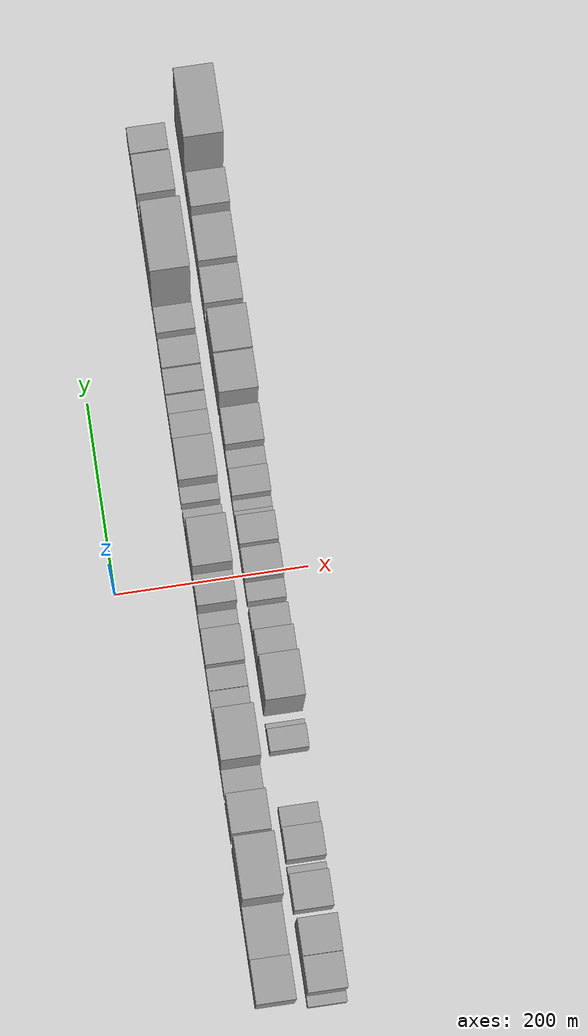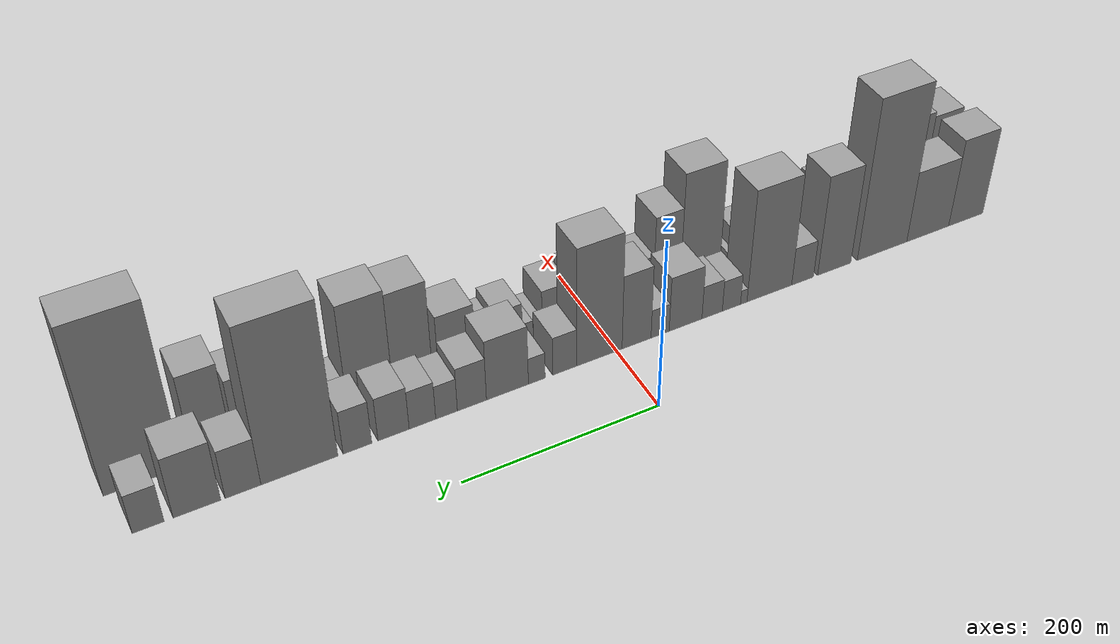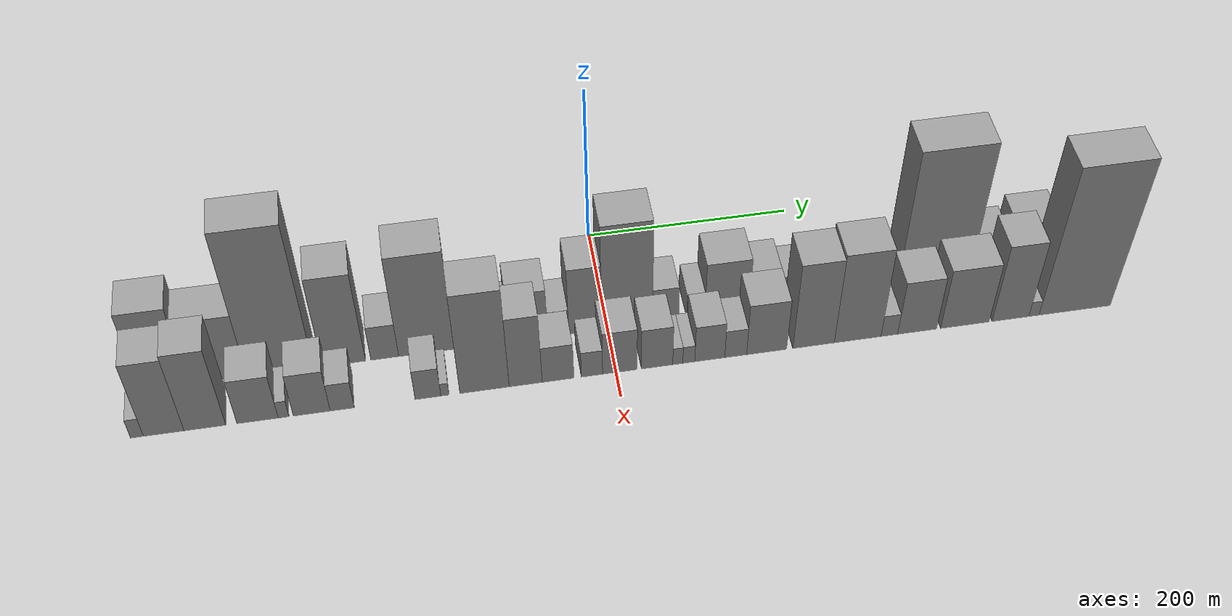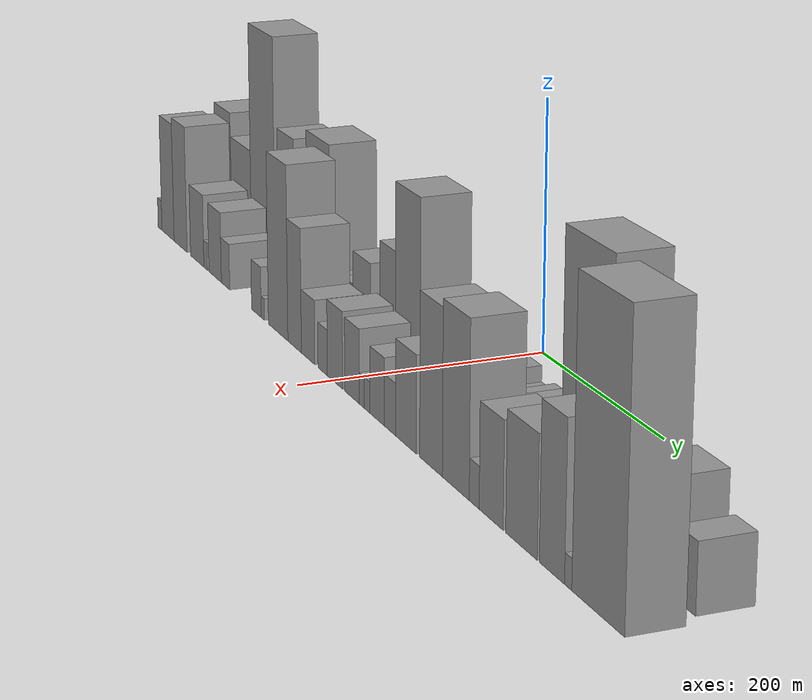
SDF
<sdf version="1.6">
 <world name="default">
  <scene>
   <sky><clouds><speed>12</speed></clouds></sky>
   <ambient>0.4 0.4 0.4 1</ambient>
   <background>0.7 0.7 0.7 1</background>
   <shadows>1</shadows>
  </scene>
  <gravity>0 0 -9.8066</gravity>
  <magnetic_field>6e-06 2.3e-05 -4.2e-05</magnetic_field>
  <physics default="0" name="default_physics" type="ode">
   <ode>
    <solver>
     <type>quick</type>
     <iters>10</iters>
     <sor>1.0</sor>
     <use_dynamic_moi_rescaling>0</use_dynamic_moi_rescaling>
    </solver>
    <constraints>
     <cfm>0</cfm>
     <erp>0.2</erp>
     <contact_max_correcting_vel>100</contact_max_correcting_vel>
     <contact_surface_layer>0.001</contact_surface_layer>
    </constraints>
   </ode>
   <max_step_size>0.004</max_step_size>
   <real_time_factor>1</real_time_factor>
   <real_time_update_rate>250</real_time_update_rate>
  </physics>
  <light name="sun" type="directional">
   <pose>0 0 10 0 0 0</pose>
   <diffuse>0.8 0.8 0.8 1</diffuse>
   <specular>0.2 0.2 0.2 1</specular>
   <attenuation>
    <range>1000</range>
    <constant>0.9</constant>
    <linear>0.01</linear>
    <quadratic>0.001</quadratic>
   </attenuation>
   <direction>-0.5 0.1 -0.9</direction>
  </light>
  <model name="building_1">
   <static>1</static>
   <pose>100.0000 -414.8555 0 0.000000 0.000000 0.000000</pose>
   <link name="link">
    <pose>0 0 55.50 0 0 0</pose>
    <collision name="collision"><geometry><box><size>40.0000 44.2891 111.0000</size></box></geometry></collision>
    <visual name="visual">
     <cast_shadows>0</cast_shadows>
     <geometry><box><size>40.0000 44.2891 111.0000</size></box></geometry>
     <material>
      <script>
       <uri>model://grey_wall/materials/scripts</uri>
       <uri>model://grey_wall/materials/textures</uri>
       <name>vrc/grey_wall</name>
      </script>
     </material>
    </visual>
   </link>
  </model>
  <model name="building_2">
   <static>1</static>
   <pose>100.0000 -365.9981 0 0.000000 0.000000 0.000000</pose>
   <link name="link">
    <pose>0 0 45.00 0 0 0</pose>
    <collision name="collision"><geometry><box><size>40.0000 53.4256 90.0000</size></box></geometry></collision>
    <visual name="visual">
     <cast_shadows>0</cast_shadows>
     <geometry><box><size>40.0000 53.4256 90.0000</size></box></geometry>
     <material>
      <script>
       <uri>model://grey_wall/materials/scripts</uri>
       <uri>model://grey_wall/materials/textures</uri>
       <name>vrc/grey_wall</name>
      </script>
     </material>
    </visual>
   </link>
  </model>
  <model name="building_3">
   <static>1</static>
   <pose>100.0000 -308.4895 0 0.000000 0.000000 0.000000</pose>
   <link name="link">
    <pose>0 0 100.50 0 0 0</pose>
    <collision name="collision"><geometry><box><size>40.0000 61.5916 201.0000</size></box></geometry></collision>
    <visual name="visual">
     <cast_shadows>0</cast_shadows>
     <geometry><box><size>40.0000 61.5916 201.0000</size></box></geometry>
     <material>
      <script>
       <uri>model://grey_wall/materials/scripts</uri>
       <uri>model://grey_wall/materials/textures</uri>
       <name>vrc/grey_wall</name>
      </script>
     </material>
    </visual>
   </link>
  </model>
  <model name="building_4">
   <static>1</static>
   <pose>100.0000 -249.5512 0 0.000000 0.000000 0.000000</pose>
   <link name="link">
    <pose>0 0 63.00 0 0 0</pose>
    <collision name="collision"><geometry><box><size>40.0000 40.2850 126.0000</size></box></geometry></collision>
    <visual name="visual">
     <cast_shadows>0</cast_shadows>
     <geometry><box><size>40.0000 40.2850 126.0000</size></box></geometry>
     <material>
      <script>
       <uri>model://grey_wall/materials/scripts</uri>
       <uri>model://grey_wall/materials/textures</uri>
       <name>vrc/grey_wall</name>
      </script>
     </material>
    </visual>
   </link>
  </model>
  <model name="building_5">
   <static>1</static>
   <pose>100.0000 -211.3880 0 0.000000 0.000000 0.000000</pose>
   <link name="link">
    <pose>0 0 24.00 0 0 0</pose>
    <collision name="collision"><geometry><box><size>40.0000 26.0413 48.0000</size></box></geometry></collision>
    <visual name="visual">
     <cast_shadows>0</cast_shadows>
     <geometry><box><size>40.0000 26.0413 48.0000</size></box></geometry>
     <material>
      <script>
       <uri>model://grey_wall/materials/scripts</uri>
       <uri>model://grey_wall/materials/textures</uri>
       <name>vrc/grey_wall</name>
      </script>
     </material>
    </visual>
   </link>
  </model>
  <model name="building_6">
   <static>1</static>
   <pose>100.0000 -172.1549 0 0.000000 0.000000 0.000000</pose>
   <link name="link">
    <pose>0 0 70.50 0 0 0</pose>
    <collision name="collision"><geometry><box><size>40.0000 52.4249 141.0000</size></box></geometry></collision>
    <visual name="visual">
     <cast_shadows>0</cast_shadows>
     <geometry><box><size>40.0000 52.4249 141.0000</size></box></geometry>
     <material>
      <script>
       <uri>model://grey_wall/materials/scripts</uri>
       <uri>model://grey_wall/materials/textures</uri>
       <name>vrc/grey_wall</name>
      </script>
     </material>
    </visual>
   </link>
  </model>
  <model name="building_7">
   <static>1</static>
   <pose>100.0000 -142.1472 0 0.000000 0.000000 0.000000</pose>
   <link name="link">
    <pose>0 0 9.00 0 0 0</pose>
    <collision name="collision"><geometry><box><size>40.0000 7.5905 18.0000</size></box></geometry></collision>
    <visual name="visual">
     <cast_shadows>0</cast_shadows>
     <geometry><box><size>40.0000 7.5905 18.0000</size></box></geometry>
     <material>
      <script>
       <uri>model://grey_wall/materials/scripts</uri>
       <uri>model://grey_wall/materials/textures</uri>
       <name>vrc/grey_wall</name>
      </script>
     </material>
    </visual>
   </link>
  </model>
  <model name="building_8">
   <static>1</static>
   <pose>100.0000 -127.8796 0 0.000000 0.000000 0.000000</pose>
   <link name="link">
    <pose>0 0 19.50 0 0 0</pose>
    <collision name="collision"><geometry><box><size>40.0000 20.9448 39.0000</size></box></geometry></collision>
    <visual name="visual">
     <cast_shadows>0</cast_shadows>
     <geometry><box><size>40.0000 20.9448 39.0000</size></box></geometry>
     <material>
      <script>
       <uri>model://grey_wall/materials/scripts</uri>
       <uri>model://grey_wall/materials/textures</uri>
       <name>vrc/grey_wall</name>
      </script>
     </material>
    </visual>
   </link>
  </model>
  <model name="building_9">
   <static>1</static>
   <pose>100.0000 -105.7908 0 0.000000 0.000000 0.000000</pose>
   <link name="link">
    <pose>0 0 21.00 0 0 0</pose>
    <collision name="collision"><geometry><box><size>40.0000 23.2327 42.0000</size></box></geometry></collision>
    <visual name="visual">
     <cast_shadows>0</cast_shadows>
     <geometry><box><size>40.0000 23.2327 42.0000</size></box></geometry>
     <material>
      <script>
       <uri>model://grey_wall/materials/scripts</uri>
       <uri>model://grey_wall/materials/textures</uri>
       <name>vrc/grey_wall</name>
      </script>
     </material>
    </visual>
   </link>
  </model>
  <model name="building_10">
   <static>1</static>
   <pose>100.0000 -75.7227 0 0.000000 0.000000 0.000000</pose>
   <link name="link">
    <pose>0 0 34.50 0 0 0</pose>
    <collision name="collision"><geometry><box><size>40.0000 36.9034 69.0000</size></box></geometry></collision>
    <visual name="visual">
     <cast_shadows>0</cast_shadows>
     <geometry><box><size>40.0000 36.9034 69.0000</size></box></geometry>
     <material>
      <script>
       <uri>model://grey_wall/materials/scripts</uri>
       <uri>model://grey_wall/materials/textures</uri>
       <name>vrc/grey_wall</name>
      </script>
     </material>
    </visual>
   </link>
  </model>
  <model name="building_11">
   <static>1</static>
   <pose>100.0000 -47.1928 0 0.000000 0.000000 0.000000</pose>
   <link name="link">
    <pose>0 0 18.00 0 0 0</pose>
    <collision name="collision"><geometry><box><size>40.0000 20.1564 36.0000</size></box></geometry></collision>
    <visual name="visual">
     <cast_shadows>0</cast_shadows>
     <geometry><box><size>40.0000 20.1564 36.0000</size></box></geometry>
     <material>
      <script>
       <uri>model://grey_wall/materials/scripts</uri>
       <uri>model://grey_wall/materials/textures</uri>
       <name>vrc/grey_wall</name>
      </script>
     </material>
    </visual>
   </link>
  </model>
  <model name="building_12">
   <static>1</static>
   <pose>100.0000 -21.2088 0 0.000000 0.000000 0.000000</pose>
   <link name="link">
    <pose>0 0 46.50 0 0 0</pose>
    <collision name="collision"><geometry><box><size>40.0000 31.8117 93.0000</size></box></geometry></collision>
    <visual name="visual">
     <cast_shadows>0</cast_shadows>
     <geometry><box><size>40.0000 31.8117 93.0000</size></box></geometry>
     <material>
      <script>
       <uri>model://grey_wall/materials/scripts</uri>
       <uri>model://grey_wall/materials/textures</uri>
       <name>vrc/grey_wall</name>
      </script>
     </material>
    </visual>
   </link>
  </model>
  <model name="building_13">
   <static>1</static>
   <pose>100.0000 19.1538 0 0.000000 0.000000 0.000000</pose>
   <link name="link">
    <pose>0 0 73.50 0 0 0</pose>
    <collision name="collision"><geometry><box><size>40.0000 48.9134 147.0000</size></box></geometry></collision>
    <visual name="visual">
     <cast_shadows>0</cast_shadows>
     <geometry><box><size>40.0000 48.9134 147.0000</size></box></geometry>
     <material>
      <script>
       <uri>model://grey_wall/materials/scripts</uri>
       <uri>model://grey_wall/materials/textures</uri>
       <name>vrc/grey_wall</name>
      </script>
     </material>
    </visual>
   </link>
  </model>
  <model name="building_14">
   <static>1</static>
   <pose>100.0000 56.3110 0 0.000000 0.000000 0.000000</pose>
   <link name="link">
    <pose>0 0 24.00 0 0 0</pose>
    <collision name="collision"><geometry><box><size>40.0000 25.4011 48.0000</size></box></geometry></collision>
    <visual name="visual">
     <cast_shadows>0</cast_shadows>
     <geometry><box><size>40.0000 25.4011 48.0000</size></box></geometry>
     <material>
      <script>
       <uri>model://grey_wall/materials/scripts</uri>
       <uri>model://grey_wall/materials/textures</uri>
       <name>vrc/grey_wall</name>
      </script>
     </material>
    </visual>
   </link>
  </model>
  <model name="building_15">
   <static>1</static>
   <pose>100.0000 85.7866 0 0.000000 0.000000 0.000000</pose>
   <link name="link">
    <pose>0 0 16.50 0 0 0</pose>
    <collision name="collision"><geometry><box><size>40.0000 17.5499 33.0000</size></box></geometry></collision>
    <visual name="visual">
     <cast_shadows>0</cast_shadows>
     <geometry><box><size>40.0000 17.5499 33.0000</size></box></geometry>
     <material>
      <script>
       <uri>model://grey_wall/materials/scripts</uri>
       <uri>model://grey_wall/materials/textures</uri>
       <name>vrc/grey_wall</name>
      </script>
     </material>
    </visual>
   </link>
  </model>
  <model name="building_16">
   <static>1</static>
   <pose>100.0000 116.1992 0 0.000000 0.000000 0.000000</pose>
   <link name="link">
    <pose>0 0 37.50 0 0 0</pose>
    <collision name="collision"><geometry><box><size>40.0000 43.2753 75.0000</size></box></geometry></collision>
    <visual name="visual">
     <cast_shadows>0</cast_shadows>
     <geometry><box><size>40.0000 43.2753 75.0000</size></box></geometry>
     <material>
      <script>
       <uri>model://grey_wall/materials/scripts</uri>
       <uri>model://grey_wall/materials/textures</uri>
       <name>vrc/grey_wall</name>
      </script>
     </material>
    </visual>
   </link>
  </model>
  <model name="building_17">
   <static>1</static>
   <pose>100.0000 152.5779 0 0.000000 0.000000 0.000000</pose>
   <link name="link">
    <pose>0 0 27.00 0 0 0</pose>
    <collision name="collision"><geometry><box><size>40.0000 29.4822 54.0000</size></box></geometry></collision>
    <visual name="visual">
     <cast_shadows>0</cast_shadows>
     <geometry><box><size>40.0000 29.4822 54.0000</size></box></geometry>
     <material>
      <script>
       <uri>model://grey_wall/materials/scripts</uri>
       <uri>model://grey_wall/materials/textures</uri>
       <name>vrc/grey_wall</name>
      </script>
     </material>
    </visual>
   </link>
  </model>
  <model name="building_18">
   <static>1</static>
   <pose>100.0000 178.1741 0 0.000000 0.000000 0.000000</pose>
   <link name="link">
    <pose>0 0 21.00 0 0 0</pose>
    <collision name="collision"><geometry><box><size>40.0000 21.7101 42.0000</size></box></geometry></collision>
    <visual name="visual">
     <cast_shadows>0</cast_shadows>
     <geometry><box><size>40.0000 21.7101 42.0000</size></box></geometry>
     <material>
      <script>
       <uri>model://grey_wall/materials/scripts</uri>
       <uri>model://grey_wall/materials/textures</uri>
       <name>vrc/grey_wall</name>
      </script>
     </material>
    </visual>
   </link>
  </model>
  <model name="building_19">
   <static>1</static>
   <pose>100.0000 202.1980 0 0.000000 0.000000 0.000000</pose>
   <link name="link">
    <pose>0 0 24.00 0 0 0</pose>
    <collision name="collision"><geometry><box><size>40.0000 26.3378 48.0000</size></box></geometry></collision>
    <visual name="visual">
     <cast_shadows>0</cast_shadows>
     <geometry><box><size>40.0000 26.3378 48.0000</size></box></geometry>
     <material>
      <script>
       <uri>model://grey_wall/materials/scripts</uri>
       <uri>model://grey_wall/materials/textures</uri>
       <name>vrc/grey_wall</name>
      </script>
     </material>
    </visual>
   </link>
  </model>
  <model name="building_20">
   <static>1</static>
   <pose>100.0000 230.6252 0 0.000000 0.000000 0.000000</pose>
   <link name="link">
    <pose>0 0 27.00 0 0 0</pose>
    <collision name="collision"><geometry><box><size>40.0000 30.5164 54.0000</size></box></geometry></collision>
    <visual name="visual">
     <cast_shadows>0</cast_shadows>
     <geometry><box><size>40.0000 30.5164 54.0000</size></box></geometry>
     <material>
      <script>
       <uri>model://grey_wall/materials/scripts</uri>
       <uri>model://grey_wall/materials/textures</uri>
       <name>vrc/grey_wall</name>
      </script>
     </material>
    </visual>
   </link>
  </model>
  <model name="building_21">
   <static>1</static>
   <pose>100.0000 265.6750 0 0.000000 0.000000 0.000000</pose>
   <link name="link">
    <pose>0 0 27.00 0 0 0</pose>
    <collision name="collision"><geometry><box><size>40.0000 27.5833 54.0000</size></box></geometry></collision>
    <visual name="visual">
     <cast_shadows>0</cast_shadows>
     <geometry><box><size>40.0000 27.5833 54.0000</size></box></geometry>
     <material>
      <script>
       <uri>model://grey_wall/materials/scripts</uri>
       <uri>model://grey_wall/materials/textures</uri>
       <name>vrc/grey_wall</name>
      </script>
     </material>
    </visual>
   </link>
  </model>
  <model name="building_22">
   <static>1</static>
   <pose>100.0000 320.4977 0 0.000000 0.000000 0.000000</pose>
   <link name="link">
    <pose>0 0 96.00 0 0 0</pose>
    <collision name="collision"><geometry><box><size>40.0000 72.0619 192.0000</size></box></geometry></collision>
    <visual name="visual">
     <cast_shadows>0</cast_shadows>
     <geometry><box><size>40.0000 72.0619 192.0000</size></box></geometry>
     <material>
      <script>
       <uri>model://grey_wall/materials/scripts</uri>
       <uri>model://grey_wall/materials/textures</uri>
       <name>vrc/grey_wall</name>
      </script>
     </material>
    </visual>
   </link>
  </model>
  <model name="building_23">
   <static>1</static>
   <pose>100.0000 372.8843 0 0.000000 0.000000 0.000000</pose>
   <link name="link">
    <pose>0 0 30.00 0 0 0</pose>
    <collision name="collision"><geometry><box><size>40.0000 32.7114 60.0000</size></box></geometry></collision>
    <visual name="visual">
     <cast_shadows>0</cast_shadows>
     <geometry><box><size>40.0000 32.7114 60.0000</size></box></geometry>
     <material>
      <script>
       <uri>model://grey_wall/materials/scripts</uri>
       <uri>model://grey_wall/materials/textures</uri>
       <name>vrc/grey_wall</name>
      </script>
     </material>
    </visual>
   </link>
  </model>
  <model name="building_24">
   <static>1</static>
   <pose>100.0000 414.5282 0 0.000000 0.000000 0.000000</pose>
   <link name="link">
    <pose>0 0 37.50 0 0 0</pose>
    <collision name="collision"><geometry><box><size>40.0000 42.5766 75.0000</size></box></geometry></collision>
    <visual name="visual">
     <cast_shadows>0</cast_shadows>
     <geometry><box><size>40.0000 42.5766 75.0000</size></box></geometry>
     <material>
      <script>
       <uri>model://grey_wall/materials/scripts</uri>
       <uri>model://grey_wall/materials/textures</uri>
       <name>vrc/grey_wall</name>
      </script>
     </material>
    </visual>
   </link>
  </model>
  <model name="building_25">
   <static>1</static>
   <pose>100.0000 457.8258 0 0.000000 0.000000 0.000000</pose>
   <link name="link">
    <pose>0 0 24.00 0 0 0</pose>
    <collision name="collision"><geometry><box><size>40.0000 28.0185 48.0000</size></box></geometry></collision>
    <visual name="visual">
     <cast_shadows>0</cast_shadows>
     <geometry><box><size>40.0000 28.0185 48.0000</size></box></geometry>
     <material>
      <script>
       <uri>model://grey_wall/materials/scripts</uri>
       <uri>model://grey_wall/materials/textures</uri>
       <name>vrc/grey_wall</name>
      </script>
     </material>
    </visual>
   </link>
  </model>
  <model name="building_26">
   <static>1</static>
   <pose>152.0000 -438.3015 0 0.000000 0.000000 0.000000</pose>
   <link name="link">
    <pose>0 0 13.50 0 0 0</pose>
    <collision name="collision"><geometry><box><size>40.0000 11.3970 27.0000</size></box></geometry></collision>
    <visual name="visual">
     <cast_shadows>0</cast_shadows>
     <geometry><box><size>40.0000 11.3970 27.0000</size></box></geometry>
     <material>
      <script>
       <uri>model://grey_wall/materials/scripts</uri>
       <uri>model://grey_wall/materials/textures</uri>
       <name>vrc/grey_wall</name>
      </script>
     </material>
    </visual>
   </link>
  </model>
  <model name="building_27">
   <static>1</static>
   <pose>152.0000 -414.5225 0 0.000000 0.000000 0.000000</pose>
   <link name="link">
    <pose>0 0 52.50 0 0 0</pose>
    <collision name="collision"><geometry><box><size>40.0000 36.1611 105.0000</size></box></geometry></collision>
    <visual name="visual">
     <cast_shadows>0</cast_shadows>
     <geometry><box><size>40.0000 36.1611 105.0000</size></box></geometry>
     <material>
      <script>
       <uri>model://grey_wall/materials/scripts</uri>
       <uri>model://grey_wall/materials/textures</uri>
       <name>vrc/grey_wall</name>
      </script>
     </material>
    </visual>
   </link>
  </model>
  <model name="building_28">
   <static>1</static>
   <pose>152.0000 -377.7430 0 0.000000 0.000000 0.000000</pose>
   <link name="link">
    <pose>0 0 55.50 0 0 0</pose>
    <collision name="collision"><geometry><box><size>40.0000 37.3979 111.0000</size></box></geometry></collision>
    <visual name="visual">
     <cast_shadows>0</cast_shadows>
     <geometry><box><size>40.0000 37.3979 111.0000</size></box></geometry>
     <material>
      <script>
       <uri>model://grey_wall/materials/scripts</uri>
       <uri>model://grey_wall/materials/textures</uri>
       <name>vrc/grey_wall</name>
      </script>
     </material>
    </visual>
   </link>
  </model>
  <model name="building_29">
   <static>1</static>
   <pose>152.0000 -330.5047 0 0.000000 0.000000 0.000000</pose>
   <link name="link">
    <pose>0 0 31.50 0 0 0</pose>
    <collision name="collision"><geometry><box><size>40.0000 37.0786 63.0000</size></box></geometry></collision>
    <visual name="visual">
     <cast_shadows>0</cast_shadows>
     <geometry><box><size>40.0000 37.0786 63.0000</size></box></geometry>
     <material>
      <script>
       <uri>model://grey_wall/materials/scripts</uri>
       <uri>model://grey_wall/materials/textures</uri>
       <name>vrc/grey_wall</name>
      </script>
     </material>
    </visual>
   </link>
  </model>
  <model name="building_30">
   <static>1</static>
   <pose>152.0000 -307.1126 0 0.000000 0.000000 0.000000</pose>
   <link name="link">
    <pose>0 0 12.00 0 0 0</pose>
    <collision name="collision"><geometry><box><size>40.0000 9.7056 24.0000</size></box></geometry></collision>
    <visual name="visual">
     <cast_shadows>0</cast_shadows>
     <geometry><box><size>40.0000 9.7056 24.0000</size></box></geometry>
     <material>
      <script>
       <uri>model://grey_wall/materials/scripts</uri>
       <uri>model://grey_wall/materials/textures</uri>
       <name>vrc/grey_wall</name>
      </script>
     </material>
    </visual>
   </link>
  </model>
  <model name="building_31">
   <static>1</static>
   <pose>152.0000 -281.5223 0 0.000000 0.000000 0.000000</pose>
   <link name="link">
    <pose>0 0 30.00 0 0 0</pose>
    <collision name="collision"><geometry><box><size>40.0000 33.4751 60.0000</size></box></geometry></collision>
    <visual name="visual">
     <cast_shadows>0</cast_shadows>
     <geometry><box><size>40.0000 33.4751 60.0000</size></box></geometry>
     <material>
      <script>
       <uri>model://grey_wall/materials/scripts</uri>
       <uri>model://grey_wall/materials/textures</uri>
       <name>vrc/grey_wall</name>
      </script>
     </material>
    </visual>
   </link>
  </model>
  <model name="building_32">
   <static>1</static>
   <pose>152.0000 -253.8220 0 0.000000 0.000000 0.000000</pose>
   <link name="link">
    <pose>0 0 19.50 0 0 0</pose>
    <collision name="collision"><geometry><box><size>40.0000 21.9255 39.0000</size></box></geometry></collision>
    <visual name="visual">
     <cast_shadows>0</cast_shadows>
     <geometry><box><size>40.0000 21.9255 39.0000</size></box></geometry>
     <material>
      <script>
       <uri>model://grey_wall/materials/scripts</uri>
       <uri>model://grey_wall/materials/textures</uri>
       <name>vrc/grey_wall</name>
      </script>
     </material>
    </visual>
   </link>
  </model>
  <model name="building_33">
   <static>1</static>
   <pose>152.0000 -175.3027 0 0.000000 0.000000 0.000000</pose>
   <link name="link">
    <pose>0 0 21.00 0 0 0</pose>
    <collision name="collision"><geometry><box><size>40.0000 23.7043 42.0000</size></box></geometry></collision>
    <visual name="visual">
     <cast_shadows>0</cast_shadows>
     <geometry><box><size>40.0000 23.7043 42.0000</size></box></geometry>
     <material>
      <script>
       <uri>model://grey_wall/materials/scripts</uri>
       <uri>model://grey_wall/materials/textures</uri>
       <name>vrc/grey_wall</name>
      </script>
     </material>
    </visual>
   </link>
  </model>
  <model name="building_34">
   <static>1</static>
   <pose>152.0000 -159.6773 0 0.000000 0.000000 0.000000</pose>
   <link name="link">
    <pose>0 0 9.00 0 0 0</pose>
    <collision name="collision"><geometry><box><size>40.0000 7.5464 18.0000</size></box></geometry></collision>
    <visual name="visual">
     <cast_shadows>0</cast_shadows>
     <geometry><box><size>40.0000 7.5464 18.0000</size></box></geometry>
     <material>
      <script>
       <uri>model://grey_wall/materials/scripts</uri>
       <uri>model://grey_wall/materials/textures</uri>
       <name>vrc/grey_wall</name>
      </script>
     </material>
    </visual>
   </link>
  </model>
  <model name="building_35">
   <static>1</static>
   <pose>152.0000 -123.0187 0 0.000000 0.000000 0.000000</pose>
   <link name="link">
    <pose>0 0 70.50 0 0 0</pose>
    <collision name="collision"><geometry><box><size>40.0000 45.7707 141.0000</size></box></geometry></collision>
    <visual name="visual">
     <cast_shadows>0</cast_shadows>
     <geometry><box><size>40.0000 45.7707 141.0000</size></box></geometry>
     <material>
      <script>
       <uri>model://grey_wall/materials/scripts</uri>
       <uri>model://grey_wall/materials/textures</uri>
       <name>vrc/grey_wall</name>
      </script>
     </material>
    </visual>
   </link>
  </model>
  <model name="building_36">
   <static>1</static>
   <pose>152.0000 -84.7481 0 0.000000 0.000000 0.000000</pose>
   <link name="link">
    <pose>0 0 49.50 0 0 0</pose>
    <collision name="collision"><geometry><box><size>40.0000 30.7704 99.0000</size></box></geometry></collision>
    <visual name="visual">
     <cast_shadows>0</cast_shadows>
     <geometry><box><size>40.0000 30.7704 99.0000</size></box></geometry>
     <material>
      <script>
       <uri>model://grey_wall/materials/scripts</uri>
       <uri>model://grey_wall/materials/textures</uri>
       <name>vrc/grey_wall</name>
      </script>
     </material>
    </visual>
   </link>
  </model>
  <model name="building_37">
   <static>1</static>
   <pose>152.0000 -54.4962 0 0.000000 0.000000 0.000000</pose>
   <link name="link">
    <pose>0 0 25.50 0 0 0</pose>
    <collision name="collision"><geometry><box><size>40.0000 29.7334 51.0000</size></box></geometry></collision>
    <visual name="visual">
     <cast_shadows>0</cast_shadows>
     <geometry><box><size>40.0000 29.7334 51.0000</size></box></geometry>
     <material>
      <script>
       <uri>model://grey_wall/materials/scripts</uri>
       <uri>model://grey_wall/materials/textures</uri>
       <name>vrc/grey_wall</name>
      </script>
     </material>
    </visual>
   </link>
  </model>
  <model name="building_38">
   <static>1</static>
   <pose>152.0000 -22.6252 0 0.000000 0.000000 0.000000</pose>
   <link name="link">
    <pose>0 0 18.00 0 0 0</pose>
    <collision name="collision"><geometry><box><size>40.0000 20.0086 36.0000</size></box></geometry></collision>
    <visual name="visual">
     <cast_shadows>0</cast_shadows>
     <geometry><box><size>40.0000 20.0086 36.0000</size></box></geometry>
     <material>
      <script>
       <uri>model://grey_wall/materials/scripts</uri>
       <uri>model://grey_wall/materials/textures</uri>
       <name>vrc/grey_wall</name>
      </script>
     </material>
    </visual>
   </link>
  </model>
  <model name="building_39">
   <static>1</static>
   <pose>152.0000 3.7139 0 0.000000 0.000000 0.000000</pose>
   <link name="link">
    <pose>0 0 30.00 0 0 0</pose>
    <collision name="collision"><geometry><box><size>40.0000 32.6697 60.0000</size></box></geometry></collision>
    <visual name="visual">
     <cast_shadows>0</cast_shadows>
     <geometry><box><size>40.0000 32.6697 60.0000</size></box></geometry>
     <material>
      <script>
       <uri>model://grey_wall/materials/scripts</uri>
       <uri>model://grey_wall/materials/textures</uri>
       <name>vrc/grey_wall</name>
      </script>
     </material>
    </visual>
   </link>
  </model>
  <model name="building_40">
   <static>1</static>
   <pose>152.0000 38.8727 0 0.000000 0.000000 0.000000</pose>
   <link name="link">
    <pose>0 0 28.50 0 0 0</pose>
    <collision name="collision"><geometry><box><size>40.0000 29.6478 57.0000</size></box></geometry></collision>
    <visual name="visual">
     <cast_shadows>0</cast_shadows>
     <geometry><box><size>40.0000 29.6478 57.0000</size></box></geometry>
     <material>
      <script>
       <uri>model://grey_wall/materials/scripts</uri>
       <uri>model://grey_wall/materials/textures</uri>
       <name>vrc/grey_wall</name>
      </script>
     </material>
    </visual>
   </link>
  </model>
  <model name="building_41">
   <static>1</static>
   <pose>152.0000 58.5143 0 0.000000 0.000000 0.000000</pose>
   <link name="link">
    <pose>0 0 12.00 0 0 0</pose>
    <collision name="collision"><geometry><box><size>40.0000 9.6354 24.0000</size></box></geometry></collision>
    <visual name="visual">
     <cast_shadows>0</cast_shadows>
     <geometry><box><size>40.0000 9.6354 24.0000</size></box></geometry>
     <material>
      <script>
       <uri>model://grey_wall/materials/scripts</uri>
       <uri>model://grey_wall/materials/textures</uri>
       <name>vrc/grey_wall</name>
      </script>
     </material>
    </visual>
   </link>
  </model>
  <model name="building_42">
   <static>1</static>
   <pose>152.0000 69.0441 0 0.000000 0.000000 0.000000</pose>
   <link name="link">
    <pose>0 0 12.00 0 0 0</pose>
    <collision name="collision"><geometry><box><size>40.0000 11.4242 24.0000</size></box></geometry></collision>
    <visual name="visual">
     <cast_shadows>0</cast_shadows>
     <geometry><box><size>40.0000 11.4242 24.0000</size></box></geometry>
     <material>
      <script>
       <uri>model://grey_wall/materials/scripts</uri>
       <uri>model://grey_wall/materials/textures</uri>
       <name>vrc/grey_wall</name>
      </script>
     </material>
    </visual>
   </link>
  </model>
  <model name="building_43">
   <static>1</static>
   <pose>152.0000 89.0532 0 0.000000 0.000000 0.000000</pose>
   <link name="link">
    <pose>0 0 25.50 0 0 0</pose>
    <collision name="collision"><geometry><box><size>40.0000 28.5941 51.0000</size></box></geometry></collision>
    <visual name="visual">
     <cast_shadows>0</cast_shadows>
     <geometry><box><size>40.0000 28.5941 51.0000</size></box></geometry>
     <material>
      <script>
       <uri>model://grey_wall/materials/scripts</uri>
       <uri>model://grey_wall/materials/textures</uri>
       <name>vrc/grey_wall</name>
      </script>
     </material>
    </visual>
   </link>
  </model>
  <model name="building_44">
   <static>1</static>
   <pose>152.0000 113.8425 0 0.000000 0.000000 0.000000</pose>
   <link name="link">
    <pose>0 0 19.50 0 0 0</pose>
    <collision name="collision"><geometry><box><size>40.0000 20.9843 39.0000</size></box></geometry></collision>
    <visual name="visual">
     <cast_shadows>0</cast_shadows>
     <geometry><box><size>40.0000 20.9843 39.0000</size></box></geometry>
     <material>
      <script>
       <uri>model://grey_wall/materials/scripts</uri>
       <uri>model://grey_wall/materials/textures</uri>
       <name>vrc/grey_wall</name>
      </script>
     </material>
    </visual>
   </link>
  </model>
  <model name="building_45">
   <static>1</static>
   <pose>152.0000 143.6163 0 0.000000 0.000000 0.000000</pose>
   <link name="link">
    <pose>0 0 36.00 0 0 0</pose>
    <collision name="collision"><geometry><box><size>40.0000 38.5632 72.0000</size></box></geometry></collision>
    <visual name="visual">
     <cast_shadows>0</cast_shadows>
     <geometry><box><size>40.0000 38.5632 72.0000</size></box></geometry>
     <material>
      <script>
       <uri>model://grey_wall/materials/scripts</uri>
       <uri>model://grey_wall/materials/textures</uri>
       <name>vrc/grey_wall</name>
      </script>
     </material>
    </visual>
   </link>
  </model>
  <model name="building_46">
   <static>1</static>
   <pose>152.0000 189.0044 0 0.000000 0.000000 0.000000</pose>
   <link name="link">
    <pose>0 0 60.00 0 0 0</pose>
    <collision name="collision"><geometry><box><size>40.0000 40.2131 120.0000</size></box></geometry></collision>
    <visual name="visual">
     <cast_shadows>0</cast_shadows>
     <geometry><box><size>40.0000 40.2131 120.0000</size></box></geometry>
     <material>
      <script>
       <uri>model://grey_wall/materials/scripts</uri>
       <uri>model://grey_wall/materials/textures</uri>
       <name>vrc/grey_wall</name>
      </script>
     </material>
    </visual>
   </link>
  </model>
  <model name="building_47">
   <static>1</static>
   <pose>152.0000 231.8665 0 0.000000 0.000000 0.000000</pose>
   <link name="link">
    <pose>0 0 63.00 0 0 0</pose>
    <collision name="collision"><geometry><box><size>40.0000 45.5110 126.0000</size></box></geometry></collision>
    <visual name="visual">
     <cast_shadows>0</cast_shadows>
     <geometry><box><size>40.0000 45.5110 126.0000</size></box></geometry>
     <material>
      <script>
       <uri>model://grey_wall/materials/scripts</uri>
       <uri>model://grey_wall/materials/textures</uri>
       <name>vrc/grey_wall</name>
      </script>
     </material>
    </visual>
   </link>
  </model>
  <model name="building_48">
   <static>1</static>
   <pose>152.0000 262.7739 0 0.000000 0.000000 0.000000</pose>
   <link name="link">
    <pose>0 0 15.00 0 0 0</pose>
    <collision name="collision"><geometry><box><size>40.0000 16.3037 30.0000</size></box></geometry></collision>
    <visual name="visual">
     <cast_shadows>0</cast_shadows>
     <geometry><box><size>40.0000 16.3037 30.0000</size></box></geometry>
     <material>
      <script>
       <uri>model://grey_wall/materials/scripts</uri>
       <uri>model://grey_wall/materials/textures</uri>
       <name>vrc/grey_wall</name>
      </script>
     </material>
    </visual>
   </link>
  </model>
  <model name="building_49">
   <static>1</static>
   <pose>152.0000 290.0811 0 0.000000 0.000000 0.000000</pose>
   <link name="link">
    <pose>0 0 37.50 0 0 0</pose>
    <collision name="collision"><geometry><box><size>40.0000 38.3106 75.0000</size></box></geometry></collision>
    <visual name="visual">
     <cast_shadows>0</cast_shadows>
     <geometry><box><size>40.0000 38.3106 75.0000</size></box></geometry>
     <material>
      <script>
       <uri>model://grey_wall/materials/scripts</uri>
       <uri>model://grey_wall/materials/textures</uri>
       <name>vrc/grey_wall</name>
      </script>
     </material>
    </visual>
   </link>
  </model>
  <model name="building_50">
   <static>1</static>
   <pose>152.0000 337.2323 0 0.000000 0.000000 0.000000</pose>
   <link name="link">
    <pose>0 0 42.00 0 0 0</pose>
    <collision name="collision"><geometry><box><size>40.0000 47.9918 84.0000</size></box></geometry></collision>
    <visual name="visual">
     <cast_shadows>0</cast_shadows>
     <geometry><box><size>40.0000 47.9918 84.0000</size></box></geometry>
     <material>
      <script>
       <uri>model://grey_wall/materials/scripts</uri>
       <uri>model://grey_wall/materials/textures</uri>
       <name>vrc/grey_wall</name>
      </script>
     </material>
    </visual>
   </link>
  </model>
  <model name="building_51">
   <static>1</static>
   <pose>152.0000 382.5155 0 0.000000 0.000000 0.000000</pose>
   <link name="link">
    <pose>0 0 54.00 0 0 0</pose>
    <collision name="collision"><geometry><box><size>40.0000 36.5745 108.0000</size></box></geometry></collision>
    <visual name="visual">
     <cast_shadows>0</cast_shadows>
     <geometry><box><size>40.0000 36.5745 108.0000</size></box></geometry>
     <material>
      <script>
       <uri>model://grey_wall/materials/scripts</uri>
       <uri>model://grey_wall/materials/textures</uri>
       <name>vrc/grey_wall</name>
      </script>
     </material>
    </visual>
   </link>
  </model>
  <model name="building_52">
   <static>1</static>
   <pose>152.0000 405.8879 0 0.000000 0.000000 0.000000</pose>
   <link name="link">
    <pose>0 0 10.50 0 0 0</pose>
    <collision name="collision"><geometry><box><size>40.0000 10.1703 21.0000</size></box></geometry></collision>
    <visual name="visual">
     <cast_shadows>0</cast_shadows>
     <geometry><box><size>40.0000 10.1703 21.0000</size></box></geometry>
     <material>
      <script>
       <uri>model://grey_wall/materials/scripts</uri>
       <uri>model://grey_wall/materials/textures</uri>
       <name>vrc/grey_wall</name>
      </script>
     </material>
    </visual>
   </link>
  </model>
  <model name="building_53">
   <static>1</static>
   <pose>152.0000 446.6959 0 0.000000 0.000000 0.000000</pose>
   <link name="link">
    <pose>0 0 102.00 0 0 0</pose>
    <collision name="collision"><geometry><box><size>40.0000 71.4459 204.0000</size></box></geometry></collision>
    <visual name="visual">
     <cast_shadows>0</cast_shadows>
     <geometry><box><size>40.0000 71.4459 204.0000</size></box></geometry>
     <material>
      <script>
       <uri>model://grey_wall/materials/scripts</uri>
       <uri>model://grey_wall/materials/textures</uri>
       <name>vrc/grey_wall</name>
      </script>
     </material>
    </visual>
   </link>
  </model>
 </world>
</sdf>
